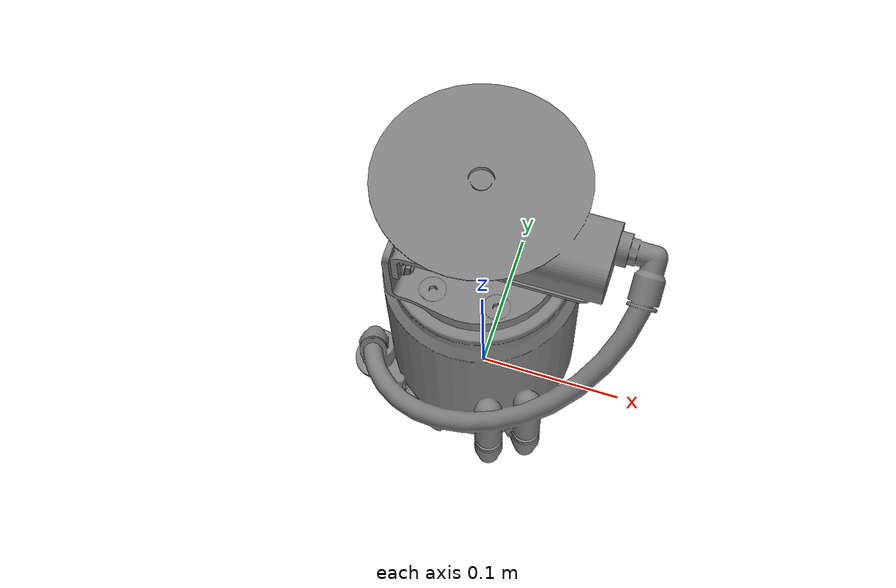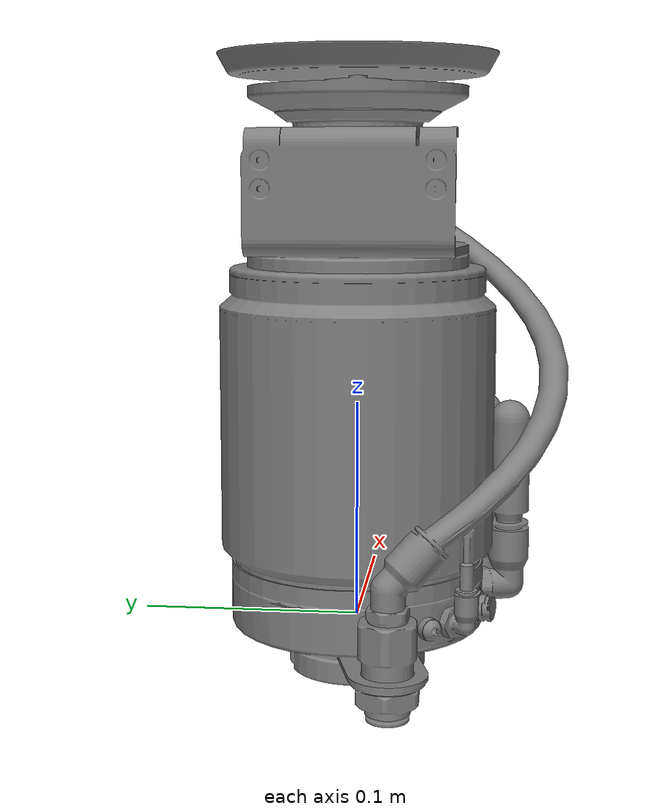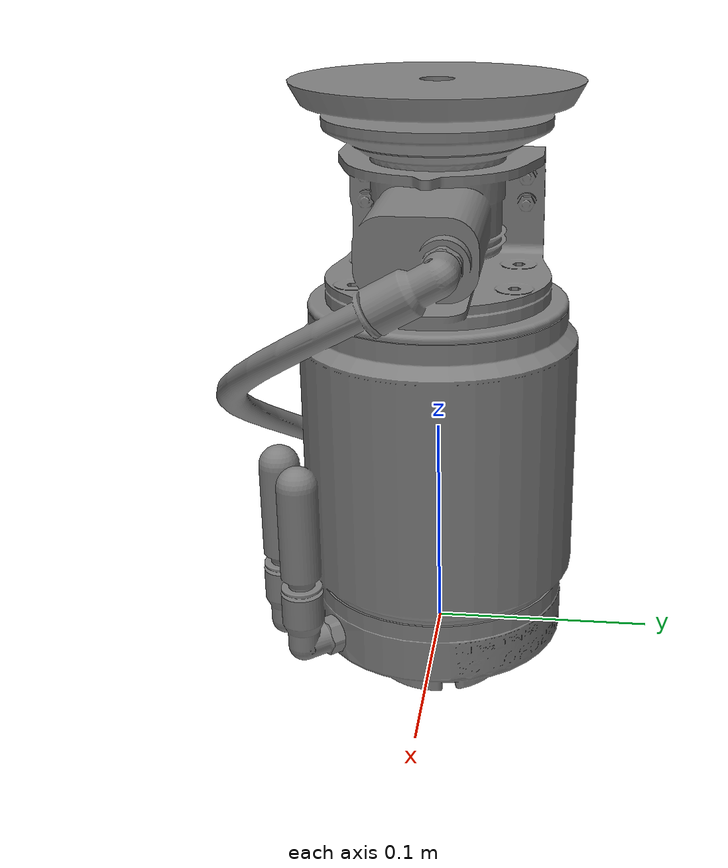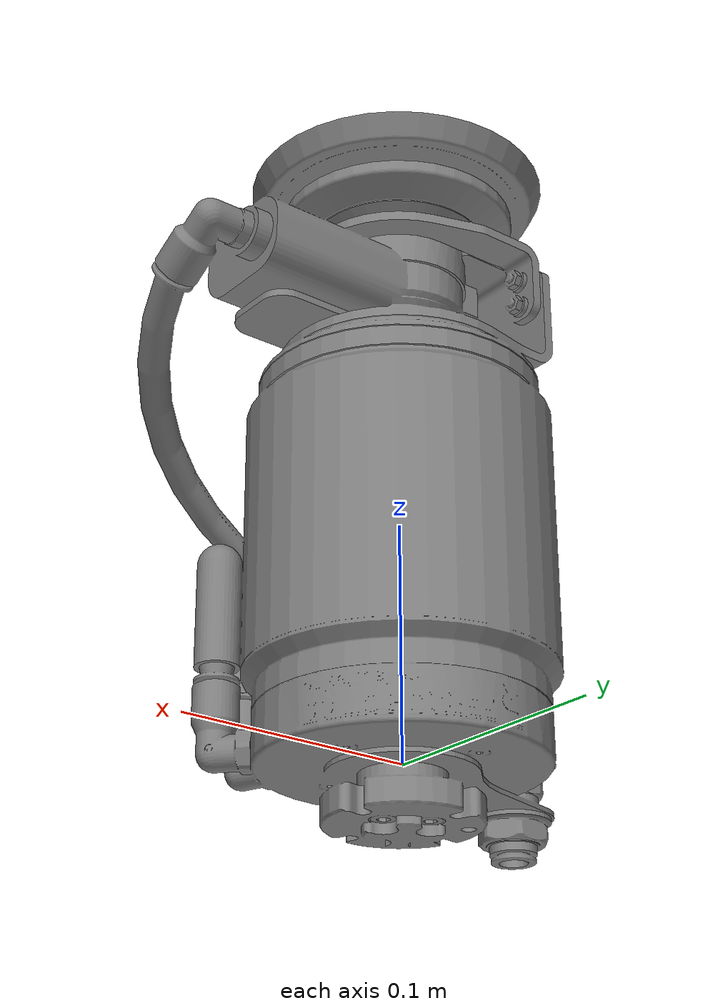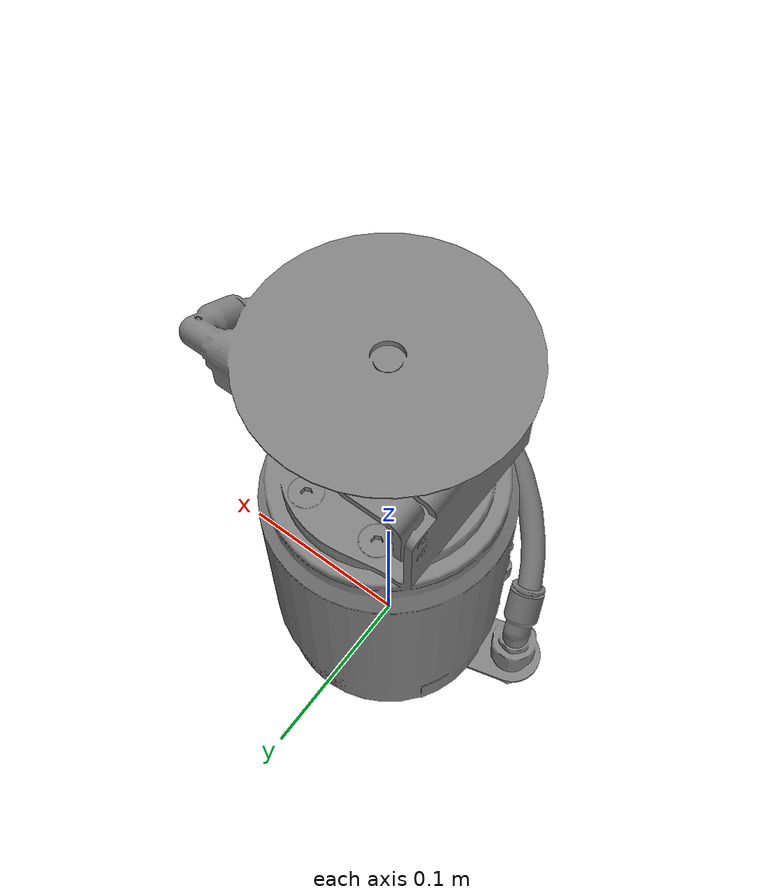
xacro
<?xml version="1.0"?>
<robot name="kane">
  <link name="tool_origin">
    <visual>
        <geometry>
            <mesh filename="package://pct/data/meshes/kane_aok_min visual.stl"
                scale="1 1 1"/>
        </geometry>
        <material name="ABS" >
            <color rgba="0.5 0.5 0.5 1.0" />
         </material>
        </visual>
  </link>
</robot>
